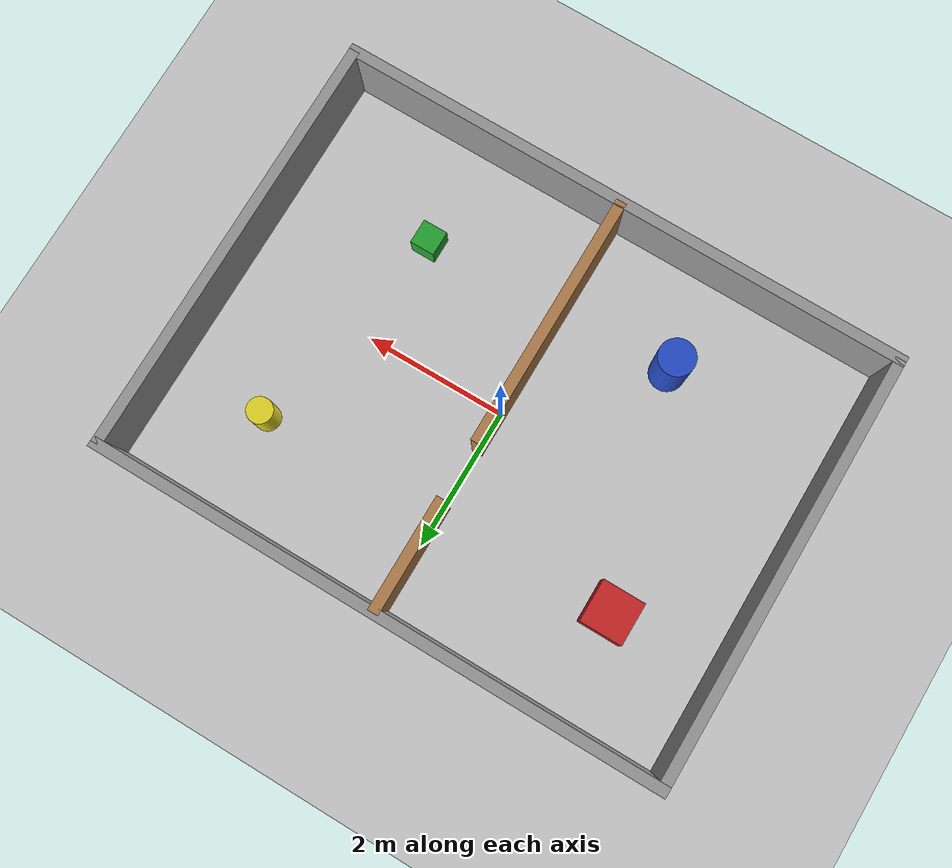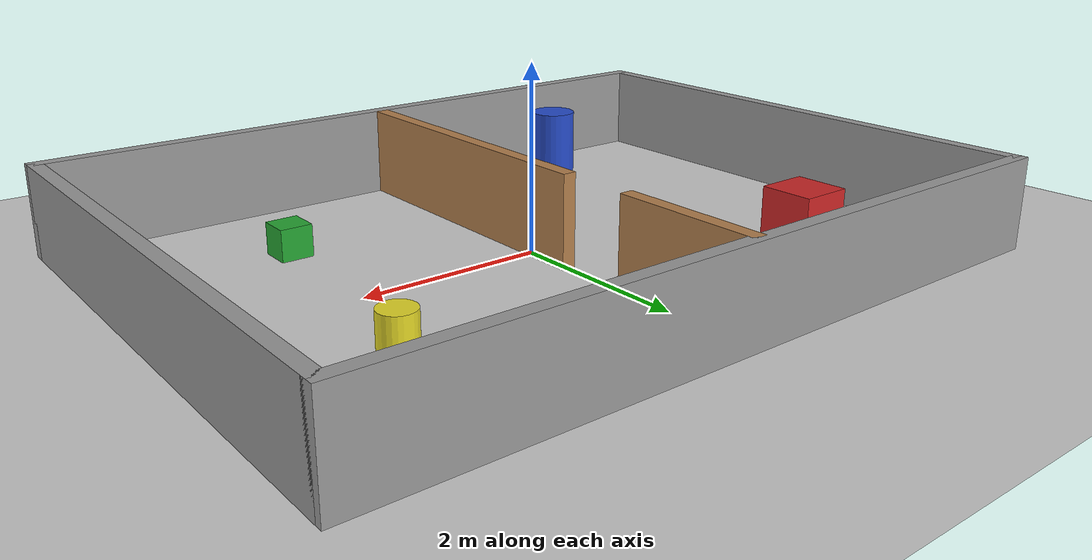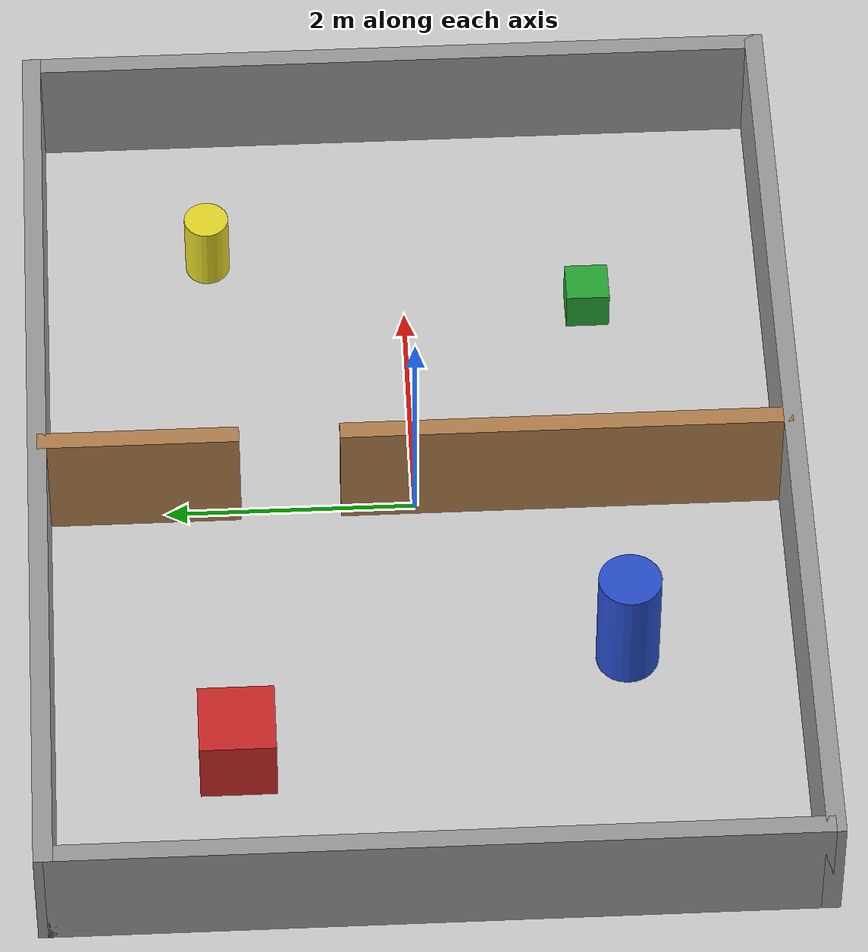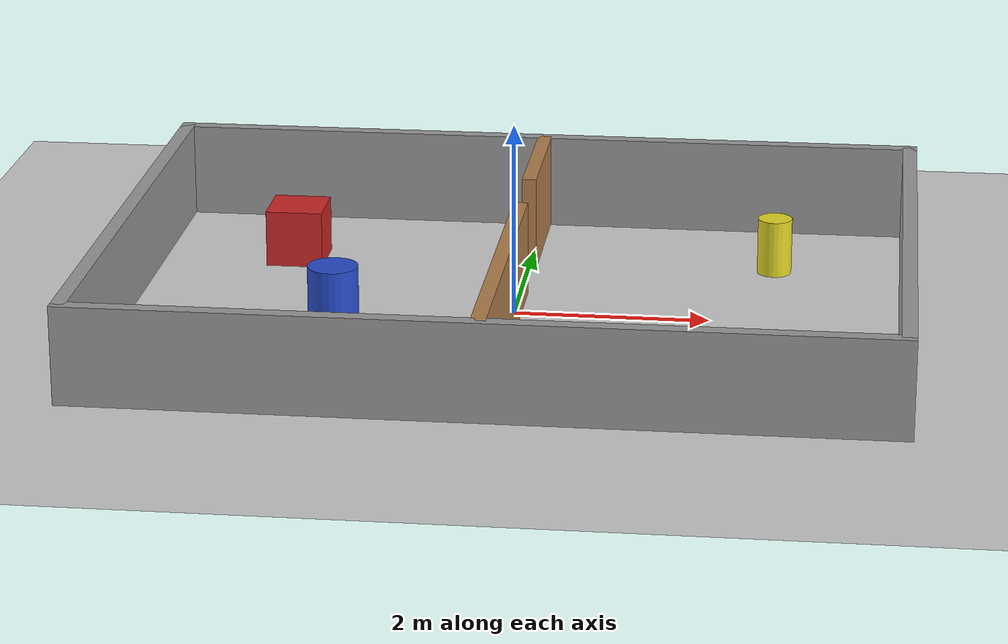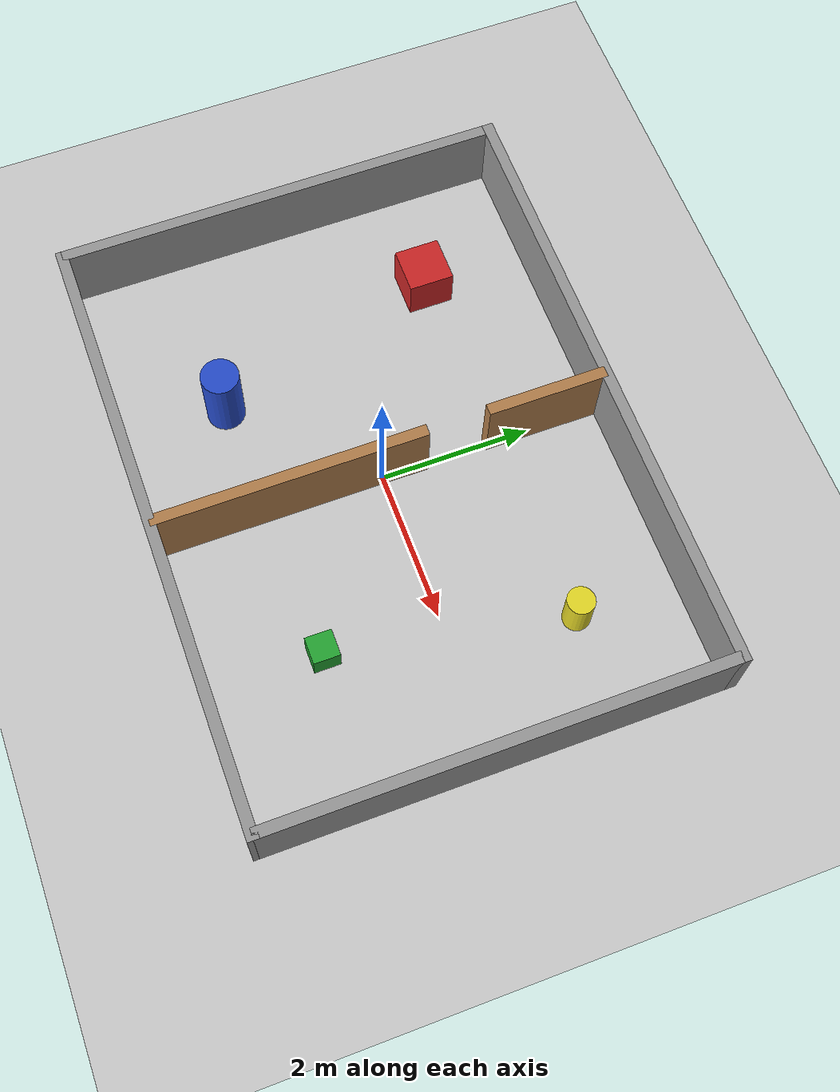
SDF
<?xml version="1.0" ?>
<sdf version="1.6">
  <world name="stage1_world">

    <!-- 光源与地面：Gazebo 自带模型 -->
    <include><uri>model://sun</uri></include>
    <include><uri>model://ground_plane</uri></include>

    <!-- 物理引擎参数 -->
    <physics type="ode">
      <max_step_size>0.001</max_step_size>
      <real_time_factor>1.0</real_time_factor>
      <real_time_update_rate>1000</real_time_update_rate>
    </physics>

    <!-- 关阴影，弱显卡上能明显提速 -->
    <scene>
      <ambient>0.6 0.6 0.6 1</ambient>
      <shadows>false</shadows>
    </scene>

    <!-- ================= 墙体 ================= -->
    <!-- 全部墙放在一个 model 里：静态几何体不需要拆分 -->
    <model name="arena_walls">
      <static>true</static>
      <link name="walls">

        <!-- 北墙 y=+3 -->
        <collision name="north_col">
          <pose>0 3 0.5 0 0 0</pose>
          <geometry><box><size>8.15 0.15 1.0</size></box></geometry>
        </collision>
        <visual name="north_vis">
          <pose>0 3 0.5 0 0 0</pose>
          <geometry><box><size>8.15 0.15 1.0</size></box></geometry>
          <material><script>
            <uri>file://media/materials/scripts/gazebo.material</uri>
            <name>Gazebo/Grey</name>
          </script></material>
        </visual>

        <!-- 南墙 y=-3 -->
        <collision name="south_col">
          <pose>0 -3 0.5 0 0 0</pose>
          <geometry><box><size>8.15 0.15 1.0</size></box></geometry>
        </collision>
        <visual name="south_vis">
          <pose>0 -3 0.5 0 0 0</pose>
          <geometry><box><size>8.15 0.15 1.0</size></box></geometry>
          <material><script>
            <uri>file://media/materials/scripts/gazebo.material</uri>
            <name>Gazebo/Grey</name>
          </script></material>
        </visual>

        <!-- 东墙 x=+4 -->
        <collision name="east_col">
          <pose>4 0 0.5 0 0 0</pose>
          <geometry><box><size>0.15 6.0 1.0</size></box></geometry>
        </collision>
        <visual name="east_vis">
          <pose>4 0 0.5 0 0 0</pose>
          <geometry><box><size>0.15 6.0 1.0</size></box></geometry>
          <material><script>
            <uri>file://media/materials/scripts/gazebo.material</uri>
            <name>Gazebo/Grey</name>
          </script></material>
        </visual>

        <!-- 西墙 x=-4 -->
        <collision name="west_col">
          <pose>-4 0 0.5 0 0 0</pose>
          <geometry><box><size>0.15 6.0 1.0</size></box></geometry>
        </collision>
        <visual name="west_vis">
          <pose>-4 0 0.5 0 0 0</pose>
          <geometry><box><size>0.15 6.0 1.0</size></box></geometry>
          <material><script>
            <uri>file://media/materials/scripts/gazebo.material</uri>
            <name>Gazebo/Grey</name>
          </script></material>
        </visual>

        <!-- 隔墙下段：y 从 -3 到 +0.6，长 3.6，中心 y=-1.2 -->
        <collision name="divider_lower_col">
          <pose>0 -1.2 0.5 0 0 0</pose>
          <geometry><box><size>0.15 3.6 1.0</size></box></geometry>
        </collision>
        <visual name="divider_lower_vis">
          <pose>0 -1.2 0.5 0 0 0</pose>
          <geometry><box><size>0.15 3.6 1.0</size></box></geometry>
          <material><script>
            <uri>file://media/materials/scripts/gazebo.material</uri>
            <name>Gazebo/Wood</name>
          </script></material>
        </visual>

        <!-- 隔墙上段：y 从 +1.4 到 +3，长 1.6，中心 y=+2.2 -->
        <!-- 于是门洞在 y ∈ [0.6, 1.4]，宽 0.8 m -->
        <collision name="divider_upper_col">
          <pose>0 2.2 0.5 0 0 0</pose>
          <geometry><box><size>0.15 1.6 1.0</size></box></geometry>
        </collision>
        <visual name="divider_upper_vis">
          <pose>0 2.2 0.5 0 0 0</pose>
          <geometry><box><size>0.15 1.6 1.0</size></box></geometry>
          <material><script>
            <uri>file://media/materials/scripts/gazebo.material</uri>
            <name>Gazebo/Wood</name>
          </script></material>
        </visual>

      </link>
    </model>

    <!-- ================= 障碍物 ================= -->

    <!-- 大立方体 0.6 m，房间 A -->
    <model name="obstacle_box_large">
      <static>true</static>
      <pose>-2.5 1.5 0.3 0 0 0</pose>
      <link name="link">
        <collision name="col">
          <geometry><box><size>0.6 0.6 0.6</size></box></geometry>
        </collision>
        <visual name="vis">
          <geometry><box><size>0.6 0.6 0.6</size></box></geometry>
          <material><script>
            <uri>file://media/materials/scripts/gazebo.material</uri>
            <name>Gazebo/Red</name>
          </script></material>
        </visual>
      </link>
    </model>

    <!-- 高圆柱 r=0.25 h=1.0，房间 A -->
    <model name="obstacle_cylinder_tall">
      <static>true</static>
      <pose>-1.6 -1.6 0.5 0 0 0</pose>
      <link name="link">
        <collision name="col">
          <geometry><cylinder><radius>0.25</radius><length>1.0</length></cylinder></geometry>
        </collision>
        <visual name="vis">
          <geometry><cylinder><radius>0.25</radius><length>1.0</length></cylinder></geometry>
          <material><script>
            <uri>file://media/materials/scripts/gazebo.material</uri>
            <name>Gazebo/Blue</name>
          </script></material>
        </visual>
      </link>
    </model>

    <!-- 小立方体 0.35 m，房间 B -->
    <model name="obstacle_box_small">
      <static>true</static>
      <pose>2.0 -1.5 0.175 0 0 0</pose>
      <link name="link">
        <collision name="col">
          <geometry><box><size>0.35 0.35 0.35</size></box></geometry>
        </collision>
        <visual name="vis">
          <geometry><box><size>0.35 0.35 0.35</size></box></geometry>
          <material><script>
            <uri>file://media/materials/scripts/gazebo.material</uri>
            <name>Gazebo/Green</name>
          </script></material>
        </visual>
      </link>
    </model>

    <!-- 矮圆柱 r=0.18 h=0.6，房间 B -->
    <model name="obstacle_cylinder_small">
      <static>true</static>
      <pose>2.6 1.6 0.3 0 0 0</pose>
      <link name="link">
        <collision name="col">
          <geometry><cylinder><radius>0.18</radius><length>0.6</length></cylinder></geometry>
        </collision>
        <visual name="vis">
          <geometry><cylinder><radius>0.18</radius><length>0.6</length></cylinder></geometry>
          <material><script>
            <uri>file://media/materials/scripts/gazebo.material</uri>
            <name>Gazebo/Yellow</name>
          </script></material>
        </visual>
      </link>
    </model>

    <!-- 相机初始视角 -->
    <gui fullscreen="0">
      <camera name="user_camera">
        <pose>0 -12 10 0 0.7 1.5708</pose>
      </camera>
    </gui>

  </world>
</sdf>
